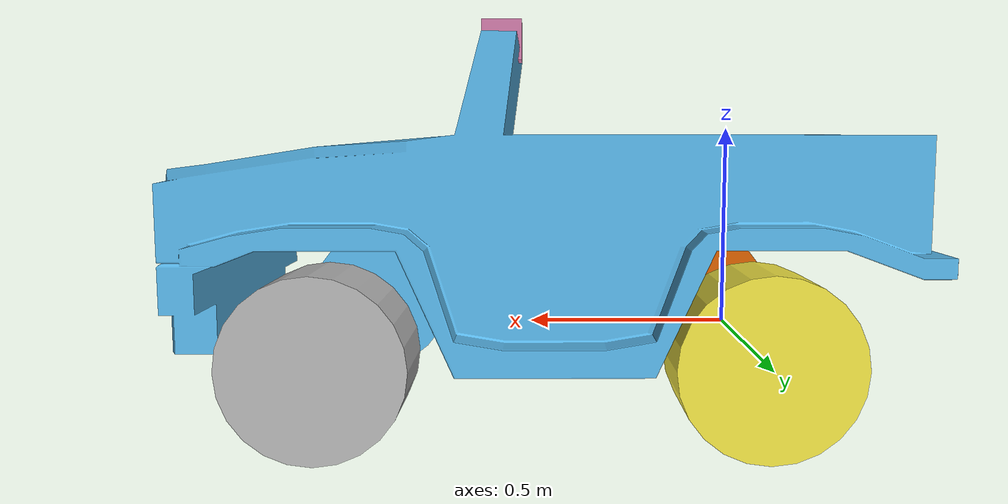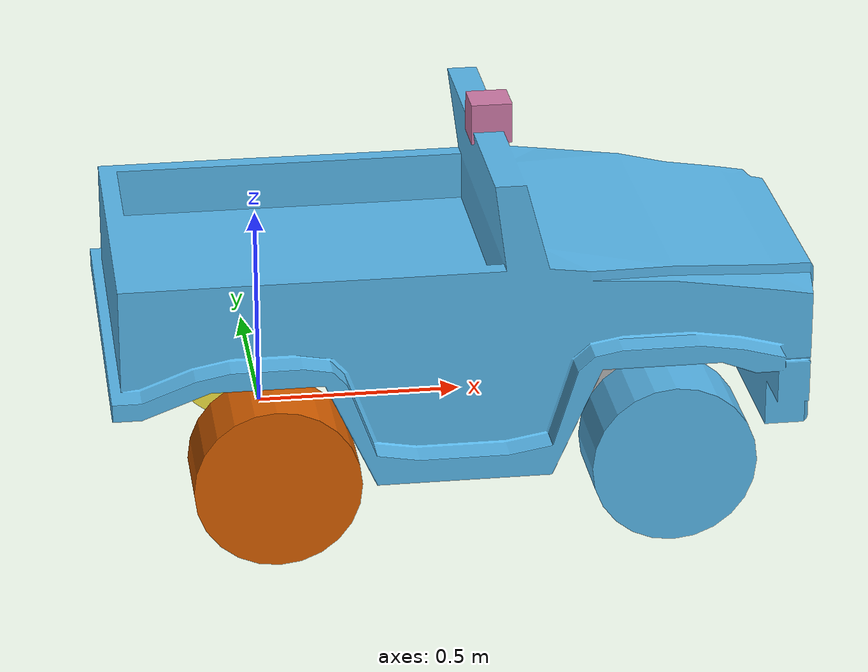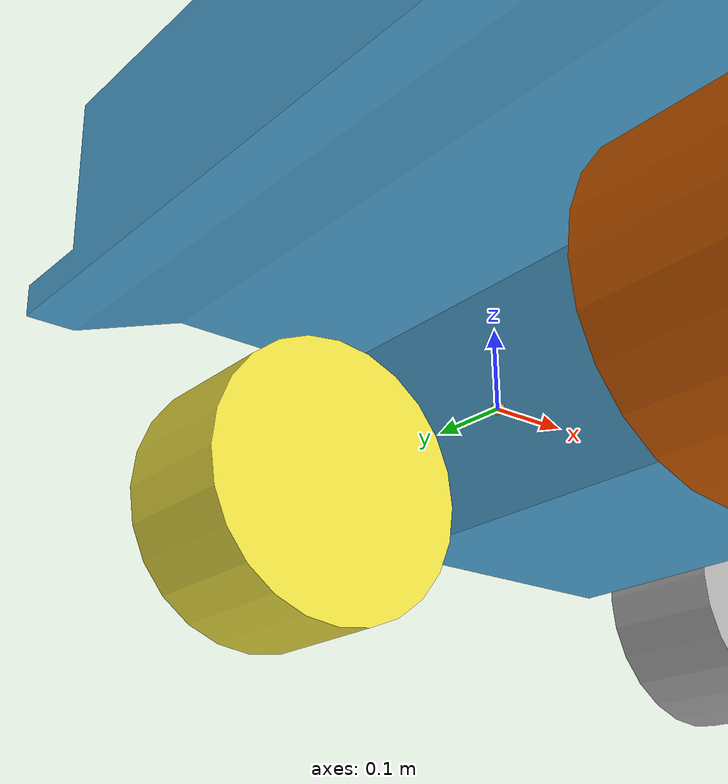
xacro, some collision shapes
<?xml version="1.0"?>

<robot name="car" xmlns:xacro="http://www.ros.org/wiki/xacro">

  <xacro:property name="base_width" value="0.4" />
  <xacro:property name="base_length" value="${base_width * 3.4}" />
  <xacro:property name="base_height" value="0.6" />

  <xacro:property name="wheel_radius" value="0.20" />
  <xacro:property name="wheel_length" value="0.2" />

  <gazebo reference="chassis">
  	<material>CarMaterial</material>
  </gazebo>
  <xacro:macro name="cylinder_inertial" params="radius height mass">
    <inertial>
      <origin xyz="0 0 0" rpy="0 0 0" />
      <mass value="${mass}"/>
      <inertia ixx="${1/2 * mass * radius * radius}"
               ixy="0" ixz="0"
               iyy="${1/12 * mass * (3 * radius * radius + height * height)}"
               iyz="0"
               izz="${1/12 * mass * (3 * radius * radius + height * height)}"/>
    </inertial>
  </xacro:macro>
  <xacro:macro name="null_inertial">
    <inertial>
      <mass value="0.001"/>
      <inertia ixx="0.001" ixy="0" ixz="0" iyy="0.001" iyz="0" izz="0.001"/>
    </inertial>
  </xacro:macro>
  <xacro:macro name="sphere_inertial" params="radius mass">
    <inertial>
      <mass value="${mass}"/>
      <inertia ixx="${radius * radius * mass * 2.0/3.0}"
               ixy="0" ixz="0"
               iyy="${radius * radius * mass * 2.0/3.0}"
               iyz="0"
               izz="${radius * radius * mass * 2.0/3.0}"/>
    </inertial>
  </xacro:macro>
  <xacro:macro name="solid_cuboid_inertial" params="width depth height mass *origin">
    <inertial>
      <xacro:insert_block name="origin"/>
      <mass value="${mass}"/>
      <inertia ixx="${mass * (width * width + height * height) / 12.0}"
               ixy="0" ixz="0"
               iyy="${mass * (depth * depth + height * height) / 12.0}"
               iyz="0"
               izz="${mass * (width * width + depth * depth) / 12.0}"/>
    </inertial>
  </xacro:macro>

  <link name="base_link">
    <parent link="odom"/>
    <visual>
      <geometry>
        <box size="0.01 0.01 0.01"/>
      </geometry>
      <material name="chassis_mat"/>
    </visual>
  </link>

   <joint name="base_link_to_chassis" type="fixed">
      <origin xyz="0.476 0 0.3" rpy="0 0 0"/>
      <parent link="base_link"/>
      <child link="chassis"/>
    </joint>

  <link name="chassis">
    <collision>
      <origin xyz="0 0 0.27" rpy="0 0 0"/>
      <geometry>
        <box size="${base_length + 0.2} ${base_width} ${base_height - 0.2}"/>
      </geometry>
    </collision>

    <visual>
      <origin xyz="0 0 0" rpy="0 0 0"/>
      <geometry>
        <mesh filename="package://ackermann_vehicle_description/meshes/car.dae"/>
      </geometry>
    </visual>

    <xacro:null_inertial/>
  </link>

  <xacro:macro name="steering_knuckle" params="suffix sidefr sidelr">
    <xacro:if value="${sidefr == 1}">
      <joint name="${suffix}_steering_knuckle_joint" type="revolute">
        <origin xyz="${base_length / 100 * 35 * sidefr} ${0.4 * sidelr} -0.3" rpy="0 0 ${pi/2}"/>
        <parent link="chassis"/>
        <child link="${suffix}_steering_knuckle_link"/>
        <axis xyz="0 0 1" />
        <limit lower="${0.5 * -1}" upper="${0.5}" effort="1.25" velocity="2.0" />
      </joint>
    <transmission name="${suffix}_wheel_steering">
      <type>transmission_interface/SimpleTransmission</type>
      <joint name="${suffix}_steering_knuckle_joint">
        <hardwareInterface>PositionJointInterface</hardwareInterface>
      </joint>
      <actuator name="${suffix}_wheel_steering_act">
        <hardwareInterface>hardware_interface/PositionJointInterface</hardwareInterface>
      </actuator>
    </transmission>
    </xacro:if>
    <xacro:unless value="${sidefr == 1}">
      <joint name="${suffix}_steering_knuckle_joint" type="fixed">
        <origin xyz="${base_length / 100 * 35 * sidefr} ${0.4 * sidelr} -0.3" rpy="0 0 ${pi/2}"/>
        <parent link="chassis"/>
        <child link="${suffix}_steering_knuckle_link"/>
      </joint>
    </xacro:unless>
  <link name="${suffix}_steering_knuckle_link">
    <visual>
      <origin xyz="0 0 0" rpy="0 0 0"/>
      <geometry>
	<sphere radius="0.01" />
      </geometry>
      <material name="white"/>
    </visual>
    <xacro:null_inertial/>
  </link>
  </xacro:macro>

  <xacro:steering_knuckle suffix="front_left" sidefr="1" sidelr="1" />
  <xacro:steering_knuckle suffix="front_right" sidefr="1" sidelr="-1" />
  <xacro:steering_knuckle suffix="rear_left" sidefr="-1" sidelr="1" />
  <xacro:steering_knuckle suffix="rear_right" sidefr="-1" sidelr="-1" />

  <xacro:macro name="wheel" params="suffix sidefr sidelr">
    <joint name="${suffix}_axel_joint" type="fixed">
      <origin xyz="0 0 0" rpy="0 0 0"/>
      <parent link="${suffix}_steering_knuckle_link"/>
      <child link="${suffix}_wheel_axel"/>
    </joint>
   <link name="${suffix}_wheel_axel">
     <visual>
      <origin xyz="0 0 0" rpy="0 0 0"/>
      <geometry>
	<sphere radius="0.01" />
      </geometry>
      <material name="white"/>
    </visual>
     <xacro:null_inertial/>
   </link>
   <joint name="${suffix}_wheel_joint" type="continuous">
     <origin xyz="0 0 0" rpy="0 0 0"/>
     <parent link="${suffix}_wheel_axel"/>
     <child link="${suffix}_wheel_link"/>
     <axis xyz="1 0 0" />
     <limit effort="100000.0" velocity="255.0" />
   </joint>
   <xacro:if value="${sidefr == 1}">
     <transmission name="${suffix}_wheel_vel">
       <type>transmission_interface/SimpleTransmission</type>
       <joint name="${suffix}_wheel_joint">
         <hardwareInterface>VelocityJointInterface</hardwareInterface>
       </joint>
       <actuator name="${suffix}_wheel_vel_act">
         <hardwareInterface>hardware_interface/VelocityJointInterface</hardwareInterface>
       </actuator>
     </transmission>
   </xacro:if>
   <link name="${suffix}_wheel_link">
     <collision>
       <origin xyz="0 0 0" rpy="0 ${pi / 2} 0"/>
       <geometry>
	 <cylinder radius="${wheel_radius}" length="${wheel_length}"/>
       </geometry>
     </collision>
     <visual>
       <origin xyz="0 0 0" rpy="0 ${pi / 2} 0"/>
       <geometry>
         <cylinder radius="${wheel_radius}" length="${wheel_length}"/>
       </geometry>
     </visual>
        <xacro:cylinder_inertial
          radius="${wheel_radius}"
          height="${wheel_length}" mass="${2.0}"/>
    </link>
  </xacro:macro>

  <xacro:wheel suffix="front_left" sidefr="1" sidelr="1" />
  <xacro:wheel suffix="front_right" sidefr="1" sidelr="-1" />
  <xacro:wheel suffix="rear_left" sidefr="-1" sidelr="1" />
  <xacro:wheel suffix="rear_right" sidefr="-1" sidelr="-1" />

  <gazebo>
    <plugin name="gazebo_ros_control" filename="libgazebo_ros_control.so"/>
  </gazebo>

  <joint name="hokuyo_joint" type="fixed">
    <axis xyz="0 0 0" />
    <origin xyz="0.574 0 0.72" rpy="0 0 0"/>
    <parent link="base_link"/>
    <child link="hokuyo"/>
  </joint>

  <!-- Hokuyo Laser -->
  <link name="hokuyo">
    <collision>
      <origin xyz="0 0 0" rpy="0 0 0"/>
      <geometry>
    <box size="0.1 0.1 0.1"/>
      </geometry>
    </collision>

    <visual>
      <origin xyz="0 0 0" rpy="0 0 0"/>
      <geometry>
        <mesh filename="package://ackermann_vehicle_description/meshes/hokuyo.dae"/>
      </geometry>
    </visual>

    <inertial>
      <mass value="1e-5" />
      <origin xyz="0 0 0" rpy="0 0 0"/>
      <inertia ixx="1e-6" ixy="0" ixz="0" iyy="1e-6" iyz="0" izz="1e-6" />
    </inertial>
  </link>

	<!-- hokuyo -->
 <gazebo reference="hokuyo">
    <sensor type="gpu_ray" name="head_hokuyo_sensor">
      <pose>0 0 0 0 0 0</pose>
      <visualize>false</visualize>
      <update_rate>40</update_rate>
      <ray>
        <scan>
          <horizontal>
            <samples>1080</samples>
            <resolution>1</resolution>
            <min_angle>-2,35619</min_angle>
            <max_angle>2,35619</max_angle>
          </horizontal>
        </scan>
        <range>
          <min>0.1</min>
          <max>30.0</max>
          <resolution>0.005</resolution>
        </range>
        <noise>
          <type>gaussian</type>
          <mean>0.0</mean>
          <stddev>0.01</stddev>
        </noise>
      </ray>
      <plugin name="gazebo_ros_head_hokuyo_controller" filename="libgazebo_ros_gpu_laser.so">
        <topicName>/scan</topicName>
        <frameName>hokuyo</frameName>
      </plugin>
    </sensor>
  </gazebo>

	<gazebo><plugin filename="libgazebo_ros_p3d.so" name="publisher_fake_odom">
  <updateRate>100.0</updateRate>
  <bodyName>base_link</bodyName>
  <topicName>odom_truth</topicName>
  <gaussianNoise>0.0</gaussianNoise>
  <frameName>map</frameName>
</plugin></gazebo>
</robot>
